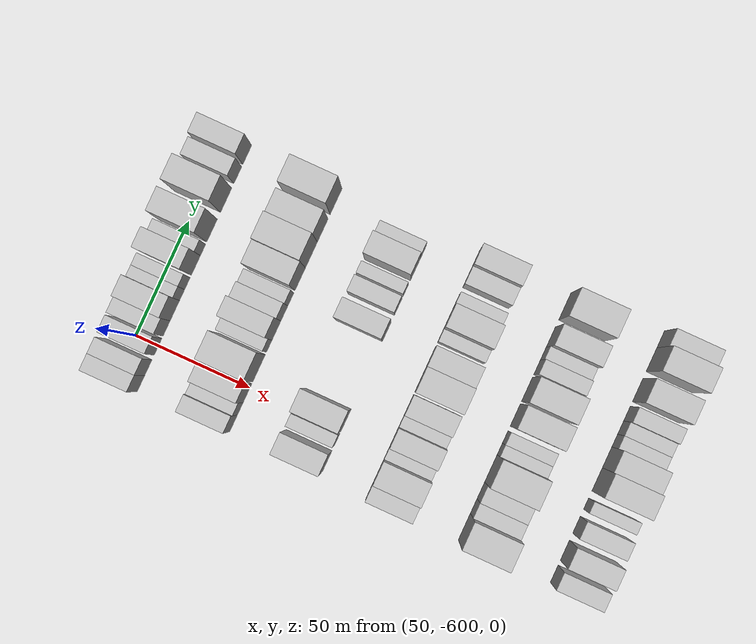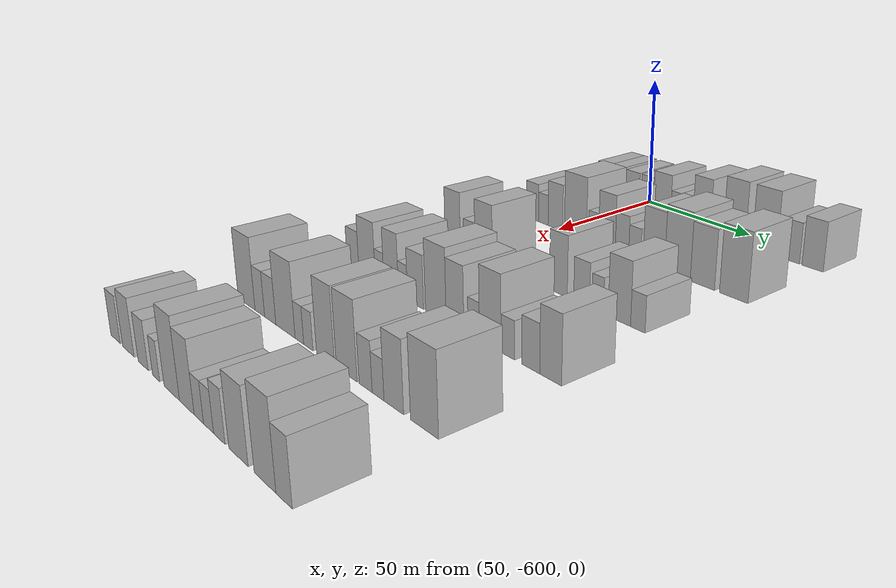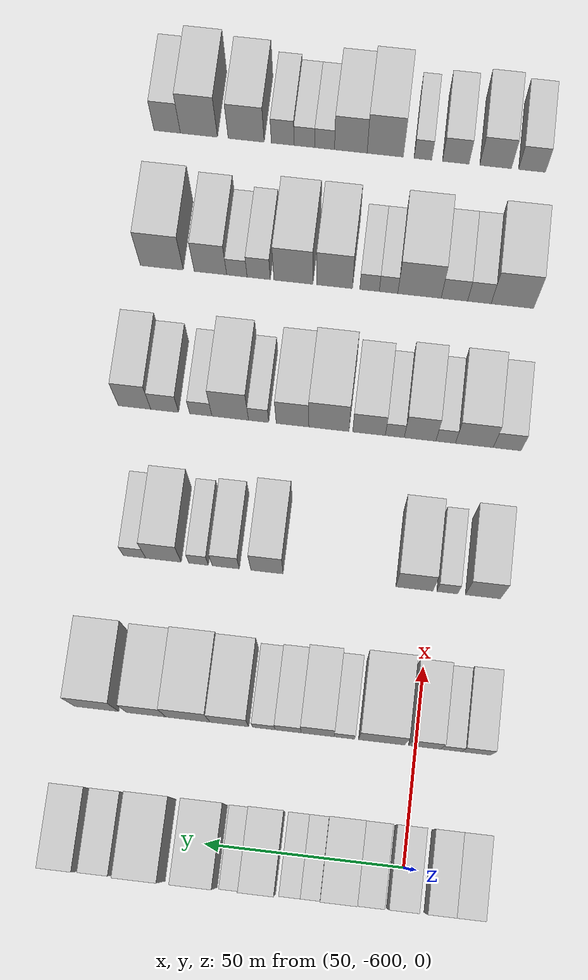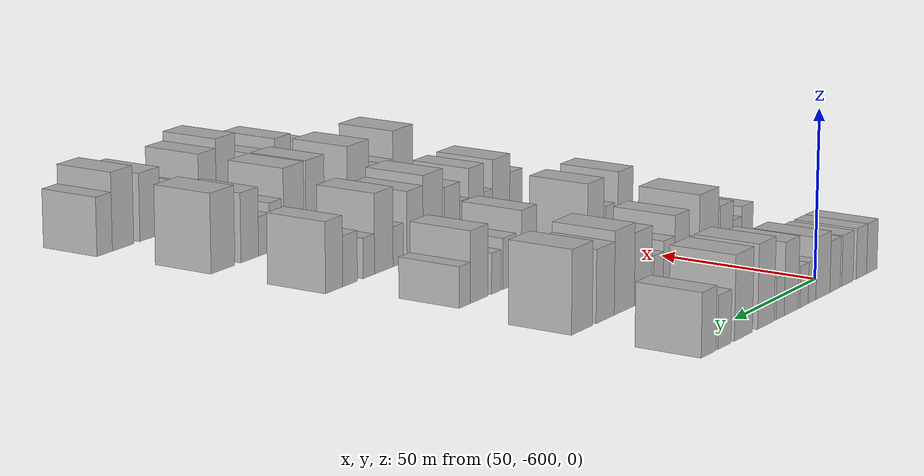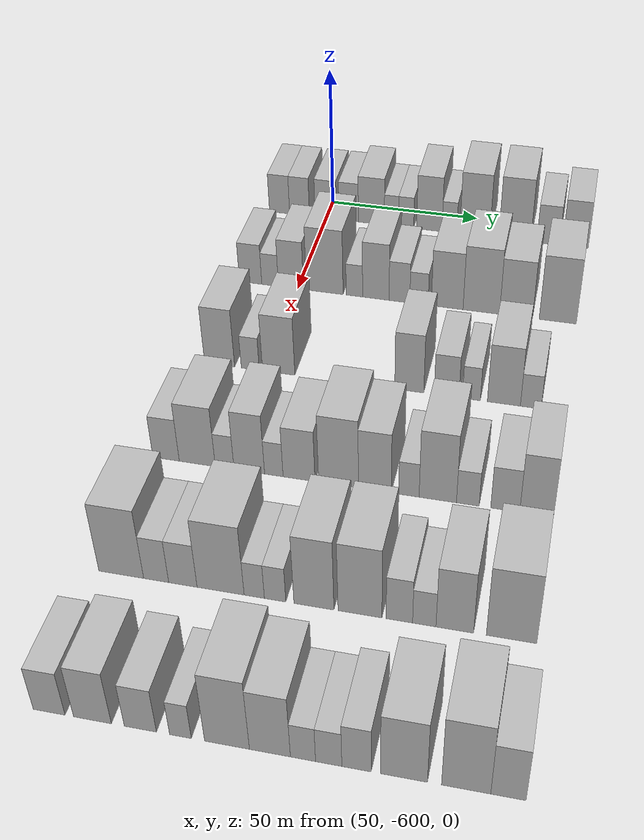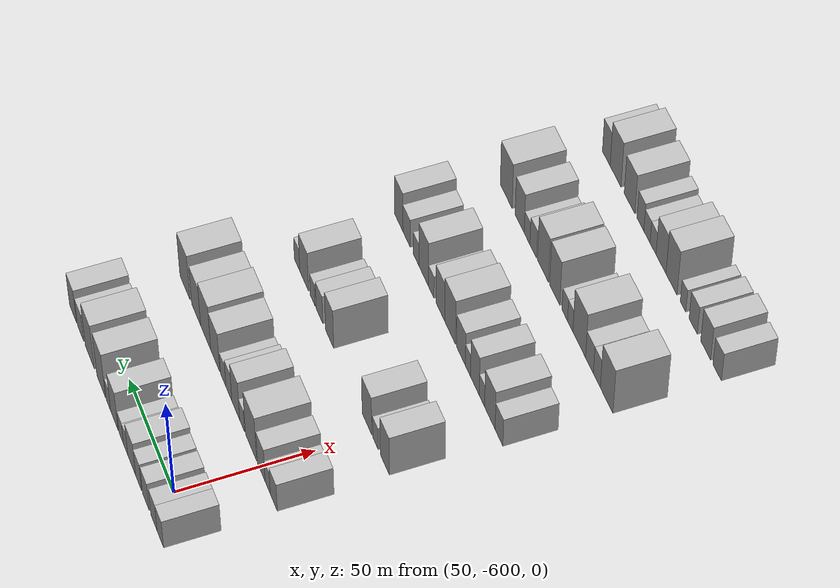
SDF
<sdf version="1.6">
 <world name="default">
  <model name="building_1">
   <static>1</static>
   <pose>50.0000 -616.4705 0 0.000000 0.000000 0.000000</pose>
   <link name="link">
    <pose>0 0 7.50 0 0 0</pose>
    <collision name="collision"><geometry><box><size>20.0000 7.0589 15.0000</size></box></geometry></collision>
    <visual name="visual">
     <cast_shadows>0</cast_shadows>
     <geometry><box><size>20.0000 7.0589 15.0000</size></box></geometry>
     <material>
      <script>
       <uri>model://HANNAS_wall/materials/scripts</uri>
       <uri>model://HANNAS_wall/materials/textures</uri>
       <name>vrc/HANNAS_wall</name>
      </script>
     </material>
    </visual>
   </link>
  </model>
  <model name="building_2">
   <static>1</static>
   <pose>50.0000 -609.4764 0 0.000000 0.000000 0.000000</pose>
   <link name="link">
    <pose>0 0 7.50 0 0 0</pose>
    <collision name="collision"><geometry><box><size>20.0000 6.9293 15.0000</size></box></geometry></collision>
    <visual name="visual">
     <cast_shadows>0</cast_shadows>
     <geometry><box><size>20.0000 6.9293 15.0000</size></box></geometry>
     <material>
      <script>
       <uri>model://HANNAS_wall/materials/scripts</uri>
       <uri>model://HANNAS_wall/materials/textures</uri>
       <name>vrc/HANNAS_wall</name>
      </script>
     </material>
    </visual>
   </link>
  </model>
  <model name="building_3">
   <static>1</static>
   <pose>50.0000 -600.3591 0 0.000000 0.000000 0.000000</pose>
   <link name="link">
    <pose>0 0 7.50 0 0 0</pose>
    <collision name="collision"><geometry><box><size>20.0000 7.3053 15.0000</size></box></geometry></collision>
    <visual name="visual">
     <cast_shadows>0</cast_shadows>
     <geometry><box><size>20.0000 7.3053 15.0000</size></box></geometry>
     <material>
      <script>
       <uri>model://HANNAS_wall/materials/scripts</uri>
       <uri>model://HANNAS_wall/materials/textures</uri>
       <name>vrc/HANNAS_wall</name>
      </script>
     </material>
    </visual>
   </link>
  </model>
  <model name="building_4">
   <static>1</static>
   <pose>50.0000 -592.3727 0 0.000000 0.000000 0.000000</pose>
   <link name="link">
    <pose>0 0 7.50 0 0 0</pose>
    <collision name="collision"><geometry><box><size>20.0000 6.6675 15.0000</size></box></geometry></collision>
    <visual name="visual">
     <cast_shadows>0</cast_shadows>
     <geometry><box><size>20.0000 6.6675 15.0000</size></box></geometry>
     <material>
      <script>
       <uri>model://HANNAS_wall/materials/scripts</uri>
       <uri>model://HANNAS_wall/materials/textures</uri>
       <name>vrc/HANNAS_wall</name>
      </script>
     </material>
    </visual>
   </link>
  </model>
  <model name="building_5">
   <static>1</static>
   <pose>50.0000 -584.5810 0 0.000000 0.000000 0.000000</pose>
   <link name="link">
    <pose>0 0 9.00 0 0 0</pose>
    <collision name="collision"><geometry><box><size>20.0000 8.9159 18.0000</size></box></geometry></collision>
    <visual name="visual">
     <cast_shadows>0</cast_shadows>
     <geometry><box><size>20.0000 8.9159 18.0000</size></box></geometry>
     <material>
      <script>
       <uri>model://HANNAS_wall/materials/scripts</uri>
       <uri>model://HANNAS_wall/materials/textures</uri>
       <name>vrc/HANNAS_wall</name>
      </script>
     </material>
    </visual>
   </link>
  </model>
  <model name="building_6">
   <static>1</static>
   <pose>50.0000 -577.7227 0 0.000000 0.000000 0.000000</pose>
   <link name="link">
    <pose>0 0 6.00 0 0 0</pose>
    <collision name="collision"><geometry><box><size>20.0000 4.8007 12.0000</size></box></geometry></collision>
    <visual name="visual">
     <cast_shadows>0</cast_shadows>
     <geometry><box><size>20.0000 4.8007 12.0000</size></box></geometry>
     <material>
      <script>
       <uri>model://HANNAS_wall/materials/scripts</uri>
       <uri>model://HANNAS_wall/materials/textures</uri>
       <name>vrc/HANNAS_wall</name>
      </script>
     </material>
    </visual>
   </link>
  </model>
  <model name="building_7">
   <static>1</static>
   <pose>50.0000 -572.7120 0 0.000000 0.000000 0.000000</pose>
   <link name="link">
    <pose>0 0 6.00 0 0 0</pose>
    <collision name="collision"><geometry><box><size>20.0000 5.2209 12.0000</size></box></geometry></collision>
    <visual name="visual">
     <cast_shadows>0</cast_shadows>
     <geometry><box><size>20.0000 5.2209 12.0000</size></box></geometry>
     <material>
      <script>
       <uri>model://HANNAS_wall/materials/scripts</uri>
       <uri>model://HANNAS_wall/materials/textures</uri>
       <name>vrc/HANNAS_wall</name>
      </script>
     </material>
    </visual>
   </link>
  </model>
  <model name="building_8">
   <static>1</static>
   <pose>50.0000 -564.8139 0 0.000000 0.000000 0.000000</pose>
   <link name="link">
    <pose>0 0 10.50 0 0 0</pose>
    <collision name="collision"><geometry><box><size>20.0000 8.5753 21.0000</size></box></geometry></collision>
    <visual name="visual">
     <cast_shadows>0</cast_shadows>
     <geometry><box><size>20.0000 8.5753 21.0000</size></box></geometry>
     <material>
      <script>
       <uri>model://HANNAS_wall/materials/scripts</uri>
       <uri>model://HANNAS_wall/materials/textures</uri>
       <name>vrc/HANNAS_wall</name>
      </script>
     </material>
    </visual>
   </link>
  </model>
  <model name="building_9">
   <static>1</static>
   <pose>50.0000 -558.0314 0 0.000000 0.000000 0.000000</pose>
   <link name="link">
    <pose>0 0 6.00 0 0 0</pose>
    <collision name="collision"><geometry><box><size>20.0000 4.9897 12.0000</size></box></geometry></collision>
    <visual name="visual">
     <cast_shadows>0</cast_shadows>
     <geometry><box><size>20.0000 4.9897 12.0000</size></box></geometry>
     <material>
      <script>
       <uri>model://HANNAS_wall/materials/scripts</uri>
       <uri>model://HANNAS_wall/materials/textures</uri>
       <name>vrc/HANNAS_wall</name>
      </script>
     </material>
    </visual>
   </link>
  </model>
  <model name="building_10">
   <static>1</static>
   <pose>50.0000 -549.5226 0 0.000000 0.000000 0.000000</pose>
   <link name="link">
    <pose>0 0 12.00 0 0 0</pose>
    <collision name="collision"><geometry><box><size>20.0000 10.0279 24.0000</size></box></geometry></collision>
    <visual name="visual">
     <cast_shadows>0</cast_shadows>
     <geometry><box><size>20.0000 10.0279 24.0000</size></box></geometry>
     <material>
      <script>
       <uri>model://HANNAS_wall/materials/scripts</uri>
       <uri>model://HANNAS_wall/materials/textures</uri>
       <name>vrc/HANNAS_wall</name>
      </script>
     </material>
    </visual>
   </link>
  </model>
  <model name="building_11">
   <static>1</static>
   <pose>50.0000 -536.2097 0 0.000000 0.000000 0.000000</pose>
   <link name="link">
    <pose>0 0 12.00 0 0 0</pose>
    <collision name="collision"><geometry><box><size>20.0000 10.5979 24.0000</size></box></geometry></collision>
    <visual name="visual">
     <cast_shadows>0</cast_shadows>
     <geometry><box><size>20.0000 10.5979 24.0000</size></box></geometry>
     <material>
      <script>
       <uri>model://HANNAS_wall/materials/scripts</uri>
       <uri>model://HANNAS_wall/materials/textures</uri>
       <name>vrc/HANNAS_wall</name>
      </script>
     </material>
    </visual>
   </link>
  </model>
  <model name="building_12">
   <static>1</static>
   <pose>50.0000 -525.1936 0 0.000000 0.000000 0.000000</pose>
   <link name="link">
    <pose>0 0 7.50 0 0 0</pose>
    <collision name="collision"><geometry><box><size>20.0000 7.4343 15.0000</size></box></geometry></collision>
    <visual name="visual">
     <cast_shadows>0</cast_shadows>
     <geometry><box><size>20.0000 7.4343 15.0000</size></box></geometry>
     <material>
      <script>
       <uri>model://HANNAS_wall/materials/scripts</uri>
       <uri>model://HANNAS_wall/materials/textures</uri>
       <name>vrc/HANNAS_wall</name>
      </script>
     </material>
    </visual>
   </link>
  </model>
  <model name="building_13">
   <static>1</static>
   <pose>50.0000 -516.2731 0 0.000000 0.000000 0.000000</pose>
   <link name="link">
    <pose>0 0 9.00 0 0 0</pose>
    <collision name="collision"><geometry><box><size>20.0000 8.4065 18.0000</size></box></geometry></collision>
    <visual name="visual">
     <cast_shadows>0</cast_shadows>
     <geometry><box><size>20.0000 8.4065 18.0000</size></box></geometry>
     <material>
      <script>
       <uri>model://HANNAS_wall/materials/scripts</uri>
       <uri>model://HANNAS_wall/materials/textures</uri>
       <name>vrc/HANNAS_wall</name>
      </script>
     </material>
    </visual>
   </link>
  </model>
  <model name="building_138">
   <static>1</static>
   <pose>90.0000 -615.3530 0 0.000000 0.000000 0.000000</pose>
   <link name="link">
    <pose>0 0 7.50 0 0 0</pose>
    <collision name="collision"><geometry><box><size>20.0000 7.2939 15.0000</size></box></geometry></collision>
    <visual name="visual">
     <cast_shadows>0</cast_shadows>
     <geometry><box><size>20.0000 7.2939 15.0000</size></box></geometry>
     <material>
      <script>
       <uri>model://HANNAS_wall/materials/scripts</uri>
       <uri>model://HANNAS_wall/materials/textures</uri>
       <name>vrc/HANNAS_wall</name>
      </script>
     </material>
    </visual>
   </link>
  </model>
  <model name="building_139">
   <static>1</static>
   <pose>90.0000 -609.0013 0 0.000000 0.000000 0.000000</pose>
   <link name="link">
    <pose>0 0 6.00 0 0 0</pose>
    <collision name="collision"><geometry><box><size>20.0000 5.4095 12.0000</size></box></geometry></collision>
    <visual name="visual">
     <cast_shadows>0</cast_shadows>
     <geometry><box><size>20.0000 5.4095 12.0000</size></box></geometry>
     <material>
      <script>
       <uri>model://HANNAS_wall/materials/scripts</uri>
       <uri>model://HANNAS_wall/materials/textures</uri>
       <name>vrc/HANNAS_wall</name>
      </script>
     </material>
    </visual>
   </link>
  </model>
  <model name="building_140">
   <static>1</static>
   <pose>90.0000 -602.2272 0 0.000000 0.000000 0.000000</pose>
   <link name="link">
    <pose>0 0 9.00 0 0 0</pose>
    <collision name="collision"><geometry><box><size>20.0000 8.1388 18.0000</size></box></geometry></collision>
    <visual name="visual">
     <cast_shadows>0</cast_shadows>
     <geometry><box><size>20.0000 8.1388 18.0000</size></box></geometry>
     <material>
      <script>
       <uri>model://HANNAS_wall/materials/scripts</uri>
       <uri>model://HANNAS_wall/materials/textures</uri>
       <name>vrc/HANNAS_wall</name>
      </script>
     </material>
    </visual>
   </link>
  </model>
  <model name="building_141">
   <static>1</static>
   <pose>90.0000 -591.2731 0 0.000000 0.000000 0.000000</pose>
   <link name="link">
    <pose>0 0 12.00 0 0 0</pose>
    <collision name="collision"><geometry><box><size>20.0000 11.7693 24.0000</size></box></geometry></collision>
    <visual name="visual">
     <cast_shadows>0</cast_shadows>
     <geometry><box><size>20.0000 11.7693 24.0000</size></box></geometry>
     <material>
      <script>
       <uri>model://HANNAS_wall/materials/scripts</uri>
       <uri>model://HANNAS_wall/materials/textures</uri>
       <name>vrc/HANNAS_wall</name>
      </script>
     </material>
    </visual>
   </link>
  </model>
  <model name="building_142">
   <static>1</static>
   <pose>90.0000 -581.7751 0 0.000000 0.000000 0.000000</pose>
   <link name="link">
    <pose>0 0 6.00 0 0 0</pose>
    <collision name="collision"><geometry><box><size>20.0000 5.2268 12.0000</size></box></geometry></collision>
    <visual name="visual">
     <cast_shadows>0</cast_shadows>
     <geometry><box><size>20.0000 5.2268 12.0000</size></box></geometry>
     <material>
      <script>
       <uri>model://HANNAS_wall/materials/scripts</uri>
       <uri>model://HANNAS_wall/materials/textures</uri>
       <name>vrc/HANNAS_wall</name>
      </script>
     </material>
    </visual>
   </link>
  </model>
  <model name="building_143">
   <static>1</static>
   <pose>90.0000 -574.9523 0 0.000000 0.000000 0.000000</pose>
   <link name="link">
    <pose>0 0 10.50 0 0 0</pose>
    <collision name="collision"><geometry><box><size>20.0000 8.4187 21.0000</size></box></geometry></collision>
    <visual name="visual">
     <cast_shadows>0</cast_shadows>
     <geometry><box><size>20.0000 8.4187 21.0000</size></box></geometry>
     <material>
      <script>
       <uri>model://HANNAS_wall/materials/scripts</uri>
       <uri>model://HANNAS_wall/materials/textures</uri>
       <name>vrc/HANNAS_wall</name>
      </script>
     </material>
    </visual>
   </link>
  </model>
  <model name="building_144">
   <static>1</static>
   <pose>90.0000 -567.4623 0 0.000000 0.000000 0.000000</pose>
   <link name="link">
    <pose>0 0 7.50 0 0 0</pose>
    <collision name="collision"><geometry><box><size>20.0000 6.5612 15.0000</size></box></geometry></collision>
    <visual name="visual">
     <cast_shadows>0</cast_shadows>
     <geometry><box><size>20.0000 6.5612 15.0000</size></box></geometry>
     <material>
      <script>
       <uri>model://HANNAS_wall/materials/scripts</uri>
       <uri>model://HANNAS_wall/materials/textures</uri>
       <name>vrc/HANNAS_wall</name>
      </script>
     </material>
    </visual>
   </link>
  </model>
  <model name="building_145">
   <static>1</static>
   <pose>90.0000 -561.3043 0 0.000000 0.000000 0.000000</pose>
   <link name="link">
    <pose>0 0 6.00 0 0 0</pose>
    <collision name="collision"><geometry><box><size>20.0000 5.7549 12.0000</size></box></geometry></collision>
    <visual name="visual">
     <cast_shadows>0</cast_shadows>
     <geometry><box><size>20.0000 5.7549 12.0000</size></box></geometry>
     <material>
      <script>
       <uri>model://HANNAS_wall/materials/scripts</uri>
       <uri>model://HANNAS_wall/materials/textures</uri>
       <name>vrc/HANNAS_wall</name>
      </script>
     </material>
    </visual>
   </link>
  </model>
  <model name="building_146">
   <static>1</static>
   <pose>90.0000 -552.4795 0 0.000000 0.000000 0.000000</pose>
   <link name="link">
    <pose>0 0 10.50 0 0 0</pose>
    <collision name="collision"><geometry><box><size>20.0000 9.8946 21.0000</size></box></geometry></collision>
    <visual name="visual">
     <cast_shadows>0</cast_shadows>
     <geometry><box><size>20.0000 9.8946 21.0000</size></box></geometry>
     <material>
      <script>
       <uri>model://HANNAS_wall/materials/scripts</uri>
       <uri>model://HANNAS_wall/materials/textures</uri>
       <name>vrc/HANNAS_wall</name>
      </script>
     </material>
    </visual>
   </link>
  </model>
  <model name="building_147">
   <static>1</static>
   <pose>90.0000 -541.8738 0 0.000000 0.000000 0.000000</pose>
   <link name="link">
    <pose>0 0 12.00 0 0 0</pose>
    <collision name="collision"><geometry><box><size>20.0000 11.3169 24.0000</size></box></geometry></collision>
    <visual name="visual">
     <cast_shadows>0</cast_shadows>
     <geometry><box><size>20.0000 11.3169 24.0000</size></box></geometry>
     <material>
      <script>
       <uri>model://HANNAS_wall/materials/scripts</uri>
       <uri>model://HANNAS_wall/materials/textures</uri>
       <name>vrc/HANNAS_wall</name>
      </script>
     </material>
    </visual>
   </link>
  </model>
  <model name="building_148">
   <static>1</static>
   <pose>90.0000 -531.1500 0 0.000000 0.000000 0.000000</pose>
   <link name="link">
    <pose>0 0 10.50 0 0 0</pose>
    <collision name="collision"><geometry><box><size>20.0000 10.1308 21.0000</size></box></geometry></collision>
    <visual name="visual">
     <cast_shadows>0</cast_shadows>
     <geometry><box><size>20.0000 10.1308 21.0000</size></box></geometry>
     <material>
      <script>
       <uri>model://HANNAS_wall/materials/scripts</uri>
       <uri>model://HANNAS_wall/materials/textures</uri>
       <name>vrc/HANNAS_wall</name>
      </script>
     </material>
    </visual>
   </link>
  </model>
  <model name="building_149">
   <static>1</static>
   <pose>90.0000 -518.4403 0 0.000000 0.000000 0.000000</pose>
   <link name="link">
    <pose>0 0 12.00 0 0 0</pose>
    <collision name="collision"><geometry><box><size>20.0000 11.2885 24.0000</size></box></geometry></collision>
    <visual name="visual">
     <cast_shadows>0</cast_shadows>
     <geometry><box><size>20.0000 11.2885 24.0000</size></box></geometry>
     <material>
      <script>
       <uri>model://HANNAS_wall/materials/scripts</uri>
       <uri>model://HANNAS_wall/materials/textures</uri>
       <name>vrc/HANNAS_wall</name>
      </script>
     </material>
    </visual>
   </link>
  </model>
  <model name="building_277">
   <static>1</static>
   <pose>130.0000 -613.4334 0 0.000000 0.000000 0.000000</pose>
   <link name="link">
    <pose>0 0 10.50 0 0 0</pose>
    <collision name="collision"><geometry><box><size>20.0000 9.1332 21.0000</size></box></geometry></collision>
    <visual name="visual">
     <cast_shadows>0</cast_shadows>
     <geometry><box><size>20.0000 9.1332 21.0000</size></box></geometry>
     <material>
      <script>
       <uri>model://HANNAS_wall/materials/scripts</uri>
       <uri>model://HANNAS_wall/materials/textures</uri>
       <name>vrc/HANNAS_wall</name>
      </script>
     </material>
    </visual>
   </link>
  </model>
  <model name="building_278">
   <static>1</static>
   <pose>130.0000 -604.1503 0 0.000000 0.000000 0.000000</pose>
   <link name="link">
    <pose>0 0 6.00 0 0 0</pose>
    <collision name="collision"><geometry><box><size>20.0000 5.4331 12.0000</size></box></geometry></collision>
    <visual name="visual">
     <cast_shadows>0</cast_shadows>
     <geometry><box><size>20.0000 5.4331 12.0000</size></box></geometry>
     <material>
      <script>
       <uri>model://HANNAS_wall/materials/scripts</uri>
       <uri>model://HANNAS_wall/materials/textures</uri>
       <name>vrc/HANNAS_wall</name>
      </script>
     </material>
    </visual>
   </link>
  </model>
  <model name="building_279">
   <static>1</static>
   <pose>130.0000 -595.6013 0 0.000000 0.000000 0.000000</pose>
   <link name="link">
    <pose>0 0 10.50 0 0 0</pose>
    <collision name="collision"><geometry><box><size>20.0000 9.6648 21.0000</size></box></geometry></collision>
    <visual name="visual">
     <cast_shadows>0</cast_shadows>
     <geometry><box><size>20.0000 9.6648 21.0000</size></box></geometry>
     <material>
      <script>
       <uri>model://HANNAS_wall/materials/scripts</uri>
       <uri>model://HANNAS_wall/materials/textures</uri>
       <name>vrc/HANNAS_wall</name>
      </script>
     </material>
    </visual>
   </link>
  </model>
  <model name="building_280">
   <static>1</static>
   <pose>130.0000 -557.1282 0 0.000000 0.000000 0.000000</pose>
   <link name="link">
    <pose>0 0 10.50 0 0 0</pose>
    <collision name="collision"><geometry><box><size>20.0000 8.4271 21.0000</size></box></geometry></collision>
    <visual name="visual">
     <cast_shadows>0</cast_shadows>
     <geometry><box><size>20.0000 8.4271 21.0000</size></box></geometry>
     <material>
      <script>
       <uri>model://HANNAS_wall/materials/scripts</uri>
       <uri>model://HANNAS_wall/materials/textures</uri>
       <name>vrc/HANNAS_wall</name>
      </script>
     </material>
    </visual>
   </link>
  </model>
  <model name="building_281">
   <static>1</static>
   <pose>130.0000 -546.3580 0 0.000000 0.000000 0.000000</pose>
   <link name="link">
    <pose>0 0 7.50 0 0 0</pose>
    <collision name="collision"><geometry><box><size>20.0000 7.1132 15.0000</size></box></geometry></collision>
    <visual name="visual">
     <cast_shadows>0</cast_shadows>
     <geometry><box><size>20.0000 7.1132 15.0000</size></box></geometry>
     <material>
      <script>
       <uri>model://HANNAS_wall/materials/scripts</uri>
       <uri>model://HANNAS_wall/materials/textures</uri>
       <name>vrc/HANNAS_wall</name>
      </script>
     </material>
    </visual>
   </link>
  </model>
  <model name="building_282">
   <static>1</static>
   <pose>130.0000 -539.2427 0 0.000000 0.000000 0.000000</pose>
   <link name="link">
    <pose>0 0 6.00 0 0 0</pose>
    <collision name="collision"><geometry><box><size>20.0000 5.1175 12.0000</size></box></geometry></collision>
    <visual name="visual">
     <cast_shadows>0</cast_shadows>
     <geometry><box><size>20.0000 5.1175 12.0000</size></box></geometry>
     <material>
      <script>
       <uri>model://HANNAS_wall/materials/scripts</uri>
       <uri>model://HANNAS_wall/materials/textures</uri>
       <name>vrc/HANNAS_wall</name>
      </script>
     </material>
    </visual>
   </link>
  </model>
  <model name="building_283">
   <static>1</static>
   <pose>130.0000 -530.0091 0 0.000000 0.000000 0.000000</pose>
   <link name="link">
    <pose>0 0 10.50 0 0 0</pose>
    <collision name="collision"><geometry><box><size>20.0000 9.3495 21.0000</size></box></geometry></collision>
    <visual name="visual">
     <cast_shadows>0</cast_shadows>
     <geometry><box><size>20.0000 9.3495 21.0000</size></box></geometry>
     <material>
      <script>
       <uri>model://HANNAS_wall/materials/scripts</uri>
       <uri>model://HANNAS_wall/materials/textures</uri>
       <name>vrc/HANNAS_wall</name>
      </script>
     </material>
    </visual>
   </link>
  </model>
  <model name="building_284">
   <static>1</static>
   <pose>130.0000 -522.4063 0 0.000000 0.000000 0.000000</pose>
   <link name="link">
    <pose>0 0 6.00 0 0 0</pose>
    <collision name="collision"><geometry><box><size>20.0000 5.8561 12.0000</size></box></geometry></collision>
    <visual name="visual">
     <cast_shadows>0</cast_shadows>
     <geometry><box><size>20.0000 5.8561 12.0000</size></box></geometry>
     <material>
      <script>
       <uri>model://HANNAS_wall/materials/scripts</uri>
       <uri>model://HANNAS_wall/materials/textures</uri>
       <name>vrc/HANNAS_wall</name>
      </script>
     </material>
    </visual>
   </link>
  </model>
  <model name="building_416">
   <static>1</static>
   <pose>170.0000 -616.2871 0 0.000000 0.000000 0.000000</pose>
   <link name="link">
    <pose>0 0 7.50 0 0 0</pose>
    <collision name="collision"><geometry><box><size>20.0000 7.4257 15.0000</size></box></geometry></collision>
    <visual name="visual">
     <cast_shadows>0</cast_shadows>
     <geometry><box><size>20.0000 7.4257 15.0000</size></box></geometry>
     <material>
      <script>
       <uri>model://HANNAS_wall/materials/scripts</uri>
       <uri>model://HANNAS_wall/materials/textures</uri>
       <name>vrc/HANNAS_wall</name>
      </script>
     </material>
    </visual>
   </link>
  </model>
  <model name="building_417">
   <static>1</static>
   <pose>170.0000 -607.5395 0 0.000000 0.000000 0.000000</pose>
   <link name="link">
    <pose>0 0 10.50 0 0 0</pose>
    <collision name="collision"><geometry><box><size>20.0000 10.0695 21.0000</size></box></geometry></collision>
    <visual name="visual">
     <cast_shadows>0</cast_shadows>
     <geometry><box><size>20.0000 10.0695 21.0000</size></box></geometry>
     <material>
      <script>
       <uri>model://HANNAS_wall/materials/scripts</uri>
       <uri>model://HANNAS_wall/materials/textures</uri>
       <name>vrc/HANNAS_wall</name>
      </script>
     </material>
    </visual>
   </link>
  </model>
  <model name="building_418">
   <static>1</static>
   <pose>170.0000 -599.9069 0 0.000000 0.000000 0.000000</pose>
   <link name="link">
    <pose>0 0 6.00 0 0 0</pose>
    <collision name="collision"><geometry><box><size>20.0000 5.1957 12.0000</size></box></geometry></collision>
    <visual name="visual">
     <cast_shadows>0</cast_shadows>
     <geometry><box><size>20.0000 5.1957 12.0000</size></box></geometry>
     <material>
      <script>
       <uri>model://HANNAS_wall/materials/scripts</uri>
       <uri>model://HANNAS_wall/materials/textures</uri>
       <name>vrc/HANNAS_wall</name>
      </script>
     </material>
    </visual>
   </link>
  </model>
  <model name="building_419">
   <static>1</static>
   <pose>170.0000 -593.0954 0 0.000000 0.000000 0.000000</pose>
   <link name="link">
    <pose>0 0 10.50 0 0 0</pose>
    <collision name="collision"><geometry><box><size>20.0000 8.4274 21.0000</size></box></geometry></collision>
    <visual name="visual">
     <cast_shadows>0</cast_shadows>
     <geometry><box><size>20.0000 8.4274 21.0000</size></box></geometry>
     <material>
      <script>
       <uri>model://HANNAS_wall/materials/scripts</uri>
       <uri>model://HANNAS_wall/materials/textures</uri>
       <name>vrc/HANNAS_wall</name>
      </script>
     </material>
    </visual>
   </link>
  </model>
  <model name="building_420">
   <static>1</static>
   <pose>170.0000 -586.3516 0 0.000000 0.000000 0.000000</pose>
   <link name="link">
    <pose>0 0 6.00 0 0 0</pose>
    <collision name="collision"><geometry><box><size>20.0000 5.0602 12.0000</size></box></geometry></collision>
    <visual name="visual">
     <cast_shadows>0</cast_shadows>
     <geometry><box><size>20.0000 5.0602 12.0000</size></box></geometry>
     <material>
      <script>
       <uri>model://HANNAS_wall/materials/scripts</uri>
       <uri>model://HANNAS_wall/materials/textures</uri>
       <name>vrc/HANNAS_wall</name>
      </script>
     </material>
    </visual>
   </link>
  </model>
  <model name="building_421">
   <static>1</static>
   <pose>170.0000 -579.4795 0 0.000000 0.000000 0.000000</pose>
   <link name="link">
    <pose>0 0 9.00 0 0 0</pose>
    <collision name="collision"><geometry><box><size>20.0000 8.6840 18.0000</size></box></geometry></collision>
    <visual name="visual">
     <cast_shadows>0</cast_shadows>
     <geometry><box><size>20.0000 8.6840 18.0000</size></box></geometry>
     <material>
      <script>
       <uri>model://HANNAS_wall/materials/scripts</uri>
       <uri>model://HANNAS_wall/materials/textures</uri>
       <name>vrc/HANNAS_wall</name>
      </script>
     </material>
    </visual>
   </link>
  </model>
  <model name="building_422">
   <static>1</static>
   <pose>170.0000 -568.7720 0 0.000000 0.000000 0.000000</pose>
   <link name="link">
    <pose>0 0 12.00 0 0 0</pose>
    <collision name="collision"><geometry><box><size>20.0000 10.7310 24.0000</size></box></geometry></collision>
    <visual name="visual">
     <cast_shadows>0</cast_shadows>
     <geometry><box><size>20.0000 10.7310 24.0000</size></box></geometry>
     <material>
      <script>
       <uri>model://HANNAS_wall/materials/scripts</uri>
       <uri>model://HANNAS_wall/materials/textures</uri>
       <name>vrc/HANNAS_wall</name>
      </script>
     </material>
    </visual>
   </link>
  </model>
  <model name="building_423">
   <static>1</static>
   <pose>170.0000 -559.0408 0 0.000000 0.000000 0.000000</pose>
   <link name="link">
    <pose>0 0 10.50 0 0 0</pose>
    <collision name="collision"><geometry><box><size>20.0000 8.7314 21.0000</size></box></geometry></collision>
    <visual name="visual">
     <cast_shadows>0</cast_shadows>
     <geometry><box><size>20.0000 8.7314 21.0000</size></box></geometry>
     <material>
      <script>
       <uri>model://HANNAS_wall/materials/scripts</uri>
       <uri>model://HANNAS_wall/materials/textures</uri>
       <name>vrc/HANNAS_wall</name>
      </script>
     </material>
    </visual>
   </link>
  </model>
  <model name="building_424">
   <static>1</static>
   <pose>170.0000 -549.9746 0 0.000000 0.000000 0.000000</pose>
   <link name="link">
    <pose>0 0 6.00 0 0 0</pose>
    <collision name="collision"><geometry><box><size>20.0000 5.4011 12.0000</size></box></geometry></collision>
    <visual name="visual">
     <cast_shadows>0</cast_shadows>
     <geometry><box><size>20.0000 5.4011 12.0000</size></box></geometry>
     <material>
      <script>
       <uri>model://HANNAS_wall/materials/scripts</uri>
       <uri>model://HANNAS_wall/materials/textures</uri>
       <name>vrc/HANNAS_wall</name>
      </script>
     </material>
    </visual>
   </link>
  </model>
  <model name="building_425">
   <static>1</static>
   <pose>170.0000 -542.3629 0 0.000000 0.000000 0.000000</pose>
   <link name="link">
    <pose>0 0 12.00 0 0 0</pose>
    <collision name="collision"><geometry><box><size>20.0000 9.8222 24.0000</size></box></geometry></collision>
    <visual name="visual">
     <cast_shadows>0</cast_shadows>
     <geometry><box><size>20.0000 9.8222 24.0000</size></box></geometry>
     <material>
      <script>
       <uri>model://HANNAS_wall/materials/scripts</uri>
       <uri>model://HANNAS_wall/materials/textures</uri>
       <name>vrc/HANNAS_wall</name>
      </script>
     </material>
    </visual>
   </link>
  </model>
  <model name="building_426">
   <static>1</static>
   <pose>170.0000 -534.4850 0 0.000000 0.000000 0.000000</pose>
   <link name="link">
    <pose>0 0 6.00 0 0 0</pose>
    <collision name="collision"><geometry><box><size>20.0000 5.9337 12.0000</size></box></geometry></collision>
    <visual name="visual">
     <cast_shadows>0</cast_shadows>
     <geometry><box><size>20.0000 5.9337 12.0000</size></box></geometry>
     <material>
      <script>
       <uri>model://HANNAS_wall/materials/scripts</uri>
       <uri>model://HANNAS_wall/materials/textures</uri>
       <name>vrc/HANNAS_wall</name>
      </script>
     </material>
    </visual>
   </link>
  </model>
  <model name="building_427">
   <static>1</static>
   <pose>170.0000 -524.7727 0 0.000000 0.000000 0.000000</pose>
   <link name="link">
    <pose>0 0 7.50 0 0 0</pose>
    <collision name="collision"><geometry><box><size>20.0000 7.4908 15.0000</size></box></geometry></collision>
    <visual name="visual">
     <cast_shadows>0</cast_shadows>
     <geometry><box><size>20.0000 7.4908 15.0000</size></box></geometry>
     <material>
      <script>
       <uri>model://HANNAS_wall/materials/scripts</uri>
       <uri>model://HANNAS_wall/materials/textures</uri>
       <name>vrc/HANNAS_wall</name>
      </script>
     </material>
    </visual>
   </link>
  </model>
  <model name="building_428">
   <static>1</static>
   <pose>170.0000 -516.6792 0 0.000000 0.000000 0.000000</pose>
   <link name="link">
    <pose>0 0 10.50 0 0 0</pose>
    <collision name="collision"><geometry><box><size>20.0000 8.6963 21.0000</size></box></geometry></collision>
    <visual name="visual">
     <cast_shadows>0</cast_shadows>
     <geometry><box><size>20.0000 8.6963 21.0000</size></box></geometry>
     <material>
      <script>
       <uri>model://HANNAS_wall/materials/scripts</uri>
       <uri>model://HANNAS_wall/materials/textures</uri>
       <name>vrc/HANNAS_wall</name>
      </script>
     </material>
    </visual>
   </link>
  </model>
  <model name="building_560">
   <static>1</static>
   <pose>210.0000 -614.2312 0 0.000000 0.000000 0.000000</pose>
   <link name="link">
    <pose>0 0 12.00 0 0 0</pose>
    <collision name="collision"><geometry><box><size>20.0000 11.5377 24.0000</size></box></geometry></collision>
    <visual name="visual">
     <cast_shadows>0</cast_shadows>
     <geometry><box><size>20.0000 11.5377 24.0000</size></box></geometry>
     <material>
      <script>
       <uri>model://HANNAS_wall/materials/scripts</uri>
       <uri>model://HANNAS_wall/materials/textures</uri>
       <name>vrc/HANNAS_wall</name>
      </script>
     </material>
    </visual>
   </link>
  </model>
  <model name="building_561">
   <static>1</static>
   <pose>210.0000 -605.2638 0 0.000000 0.000000 0.000000</pose>
   <link name="link">
    <pose>0 0 7.50 0 0 0</pose>
    <collision name="collision"><geometry><box><size>20.0000 6.3970 15.0000</size></box></geometry></collision>
    <visual name="visual">
     <cast_shadows>0</cast_shadows>
     <geometry><box><size>20.0000 6.3970 15.0000</size></box></geometry>
     <material>
      <script>
       <uri>model://HANNAS_wall/materials/scripts</uri>
       <uri>model://HANNAS_wall/materials/textures</uri>
       <name>vrc/HANNAS_wall</name>
      </script>
     </material>
    </visual>
   </link>
  </model>
  <model name="building_562">
   <static>1</static>
   <pose>210.0000 -598.4623 0 0.000000 0.000000 0.000000</pose>
   <link name="link">
    <pose>0 0 7.50 0 0 0</pose>
    <collision name="collision"><geometry><box><size>20.0000 7.2060 15.0000</size></box></geometry></collision>
    <visual name="visual">
     <cast_shadows>0</cast_shadows>
     <geometry><box><size>20.0000 7.2060 15.0000</size></box></geometry>
     <material>
      <script>
       <uri>model://HANNAS_wall/materials/scripts</uri>
       <uri>model://HANNAS_wall/materials/textures</uri>
       <name>vrc/HANNAS_wall</name>
      </script>
     </material>
    </visual>
   </link>
  </model>
  <model name="building_563">
   <static>1</static>
   <pose>210.0000 -588.9458 0 0.000000 0.000000 0.000000</pose>
   <link name="link">
    <pose>0 0 12.00 0 0 0</pose>
    <collision name="collision"><geometry><box><size>20.0000 11.8271 24.0000</size></box></geometry></collision>
    <visual name="visual">
     <cast_shadows>0</cast_shadows>
     <geometry><box><size>20.0000 11.8271 24.0000</size></box></geometry>
     <material>
      <script>
       <uri>model://HANNAS_wall/materials/scripts</uri>
       <uri>model://HANNAS_wall/materials/textures</uri>
       <name>vrc/HANNAS_wall</name>
      </script>
     </material>
    </visual>
   </link>
  </model>
  <model name="building_564">
   <static>1</static>
   <pose>210.0000 -580.5071 0 0.000000 0.000000 0.000000</pose>
   <link name="link">
    <pose>0 0 6.00 0 0 0</pose>
    <collision name="collision"><geometry><box><size>20.0000 5.0503 12.0000</size></box></geometry></collision>
    <visual name="visual">
     <cast_shadows>0</cast_shadows>
     <geometry><box><size>20.0000 5.0503 12.0000</size></box></geometry>
     <material>
      <script>
       <uri>model://HANNAS_wall/materials/scripts</uri>
       <uri>model://HANNAS_wall/materials/textures</uri>
       <name>vrc/HANNAS_wall</name>
      </script>
     </material>
    </visual>
   </link>
  </model>
  <model name="building_565">
   <static>1</static>
   <pose>210.0000 -575.3259 0 0.000000 0.000000 0.000000</pose>
   <link name="link">
    <pose>0 0 6.00 0 0 0</pose>
    <collision name="collision"><geometry><box><size>20.0000 5.3120 12.0000</size></box></geometry></collision>
    <visual name="visual">
     <cast_shadows>0</cast_shadows>
     <geometry><box><size>20.0000 5.3120 12.0000</size></box></geometry>
     <material>
      <script>
       <uri>model://HANNAS_wall/materials/scripts</uri>
       <uri>model://HANNAS_wall/materials/textures</uri>
       <name>vrc/HANNAS_wall</name>
      </script>
     </material>
    </visual>
   </link>
  </model>
  <model name="building_566">
   <static>1</static>
   <pose>210.0000 -565.7588 0 0.000000 0.000000 0.000000</pose>
   <link name="link">
    <pose>0 0 12.00 0 0 0</pose>
    <collision name="collision"><geometry><box><size>20.0000 9.8222 24.0000</size></box></geometry></collision>
    <visual name="visual">
     <cast_shadows>0</cast_shadows>
     <geometry><box><size>20.0000 9.8222 24.0000</size></box></geometry>
     <material>
      <script>
       <uri>model://HANNAS_wall/materials/scripts</uri>
       <uri>model://HANNAS_wall/materials/textures</uri>
       <name>vrc/HANNAS_wall</name>
      </script>
     </material>
    </visual>
   </link>
  </model>
  <model name="building_567">
   <static>1</static>
   <pose>210.0000 -554.5235 0 0.000000 0.000000 0.000000</pose>
   <link name="link">
    <pose>0 0 12.00 0 0 0</pose>
    <collision name="collision"><geometry><box><size>20.0000 10.6485 24.0000</size></box></geometry></collision>
    <visual name="visual">
     <cast_shadows>0</cast_shadows>
     <geometry><box><size>20.0000 10.6485 24.0000</size></box></geometry>
     <material>
      <script>
       <uri>model://HANNAS_wall/materials/scripts</uri>
       <uri>model://HANNAS_wall/materials/textures</uri>
       <name>vrc/HANNAS_wall</name>
      </script>
     </material>
    </visual>
   </link>
  </model>
  <model name="building_568">
   <static>1</static>
   <pose>210.0000 -545.0180 0 0.000000 0.000000 0.000000</pose>
   <link name="link">
    <pose>0 0 7.50 0 0 0</pose>
    <collision name="collision"><geometry><box><size>20.0000 6.3625 15.0000</size></box></geometry></collision>
    <visual name="visual">
     <cast_shadows>0</cast_shadows>
     <geometry><box><size>20.0000 6.3625 15.0000</size></box></geometry>
     <material>
      <script>
       <uri>model://HANNAS_wall/materials/scripts</uri>
       <uri>model://HANNAS_wall/materials/textures</uri>
       <name>vrc/HANNAS_wall</name>
      </script>
     </material>
    </visual>
   </link>
  </model>
  <model name="building_569">
   <static>1</static>
   <pose>210.0000 -539.0421 0 0.000000 0.000000 0.000000</pose>
   <link name="link">
    <pose>0 0 6.00 0 0 0</pose>
    <collision name="collision"><geometry><box><size>20.0000 5.5893 12.0000</size></box></geometry></collision>
    <visual name="visual">
     <cast_shadows>0</cast_shadows>
     <geometry><box><size>20.0000 5.5893 12.0000</size></box></geometry>
     <material>
      <script>
       <uri>model://HANNAS_wall/materials/scripts</uri>
       <uri>model://HANNAS_wall/materials/textures</uri>
       <name>vrc/HANNAS_wall</name>
      </script>
     </material>
    </visual>
   </link>
  </model>
  <model name="building_570">
   <static>1</static>
   <pose>210.0000 -531.7903 0 0.000000 0.000000 0.000000</pose>
   <link name="link">
    <pose>0 0 10.50 0 0 0</pose>
    <collision name="collision"><geometry><box><size>20.0000 8.9142 21.0000</size></box></geometry></collision>
    <visual name="visual">
     <cast_shadows>0</cast_shadows>
     <geometry><box><size>20.0000 8.9142 21.0000</size></box></geometry>
     <material>
      <script>
       <uri>model://HANNAS_wall/materials/scripts</uri>
       <uri>model://HANNAS_wall/materials/textures</uri>
       <name>vrc/HANNAS_wall</name>
      </script>
     </material>
    </visual>
   </link>
  </model>
  <model name="building_571">
   <static>1</static>
   <pose>210.0000 -518.4400 0 0.000000 0.000000 0.000000</pose>
   <link name="link">
    <pose>0 0 12.00 0 0 0</pose>
    <collision name="collision"><geometry><box><size>20.0000 11.7865 24.0000</size></box></geometry></collision>
    <visual name="visual">
     <cast_shadows>0</cast_shadows>
     <geometry><box><size>20.0000 11.7865 24.0000</size></box></geometry>
     <material>
      <script>
       <uri>model://HANNAS_wall/materials/scripts</uri>
       <uri>model://HANNAS_wall/materials/textures</uri>
       <name>vrc/HANNAS_wall</name>
      </script>
     </material>
    </visual>
   </link>
  </model>
  <model name="building_706">
   <static>1</static>
   <pose>250.0000 -616.2651 0 0.000000 0.000000 0.000000</pose>
   <link name="link">
    <pose>0 0 7.50 0 0 0</pose>
    <collision name="collision"><geometry><box><size>20.0000 7.4698 15.0000</size></box></geometry></collision>
    <visual name="visual">
     <cast_shadows>0</cast_shadows>
     <geometry><box><size>20.0000 7.4698 15.0000</size></box></geometry>
     <material>
      <script>
       <uri>model://HANNAS_wall/materials/scripts</uri>
       <uri>model://HANNAS_wall/materials/textures</uri>
       <name>vrc/HANNAS_wall</name>
      </script>
     </material>
    </visual>
   </link>
  </model>
  <model name="building_707">
   <static>1</static>
   <pose>250.0000 -606.1370 0 0.000000 0.000000 0.000000</pose>
   <link name="link">
    <pose>0 0 9.00 0 0 0</pose>
    <collision name="collision"><geometry><box><size>20.0000 8.7864 18.0000</size></box></geometry></collision>
    <visual name="visual">
     <cast_shadows>0</cast_shadows>
     <geometry><box><size>20.0000 8.7864 18.0000</size></box></geometry>
     <material>
      <script>
       <uri>model://HANNAS_wall/materials/scripts</uri>
       <uri>model://HANNAS_wall/materials/textures</uri>
       <name>vrc/HANNAS_wall</name>
      </script>
     </material>
    </visual>
   </link>
  </model>
  <model name="building_708">
   <static>1</static>
   <pose>250.0000 -595.0564 0 0.000000 0.000000 0.000000</pose>
   <link name="link">
    <pose>0 0 7.50 0 0 0</pose>
    <collision name="collision"><geometry><box><size>20.0000 7.3747 15.0000</size></box></geometry></collision>
    <visual name="visual">
     <cast_shadows>0</cast_shadows>
     <geometry><box><size>20.0000 7.3747 15.0000</size></box></geometry>
     <material>
      <script>
       <uri>model://HANNAS_wall/materials/scripts</uri>
       <uri>model://HANNAS_wall/materials/textures</uri>
       <name>vrc/HANNAS_wall</name>
      </script>
     </material>
    </visual>
   </link>
  </model>
  <model name="building_709">
   <static>1</static>
   <pose>250.0000 -585.9029 0 0.000000 0.000000 0.000000</pose>
   <link name="link">
    <pose>0 0 6.00 0 0 0</pose>
    <collision name="collision"><geometry><box><size>20.0000 4.9323 12.0000</size></box></geometry></collision>
    <visual name="visual">
     <cast_shadows>0</cast_shadows>
     <geometry><box><size>20.0000 4.9323 12.0000</size></box></geometry>
     <material>
      <script>
       <uri>model://HANNAS_wall/materials/scripts</uri>
       <uri>model://HANNAS_wall/materials/textures</uri>
       <name>vrc/HANNAS_wall</name>
      </script>
     </material>
    </visual>
   </link>
  </model>
  <model name="building_710">
   <static>1</static>
   <pose>250.0000 -575.3978 0 0.000000 0.000000 0.000000</pose>
   <link name="link">
    <pose>0 0 12.00 0 0 0</pose>
    <collision name="collision"><geometry><box><size>20.0000 10.0779 24.0000</size></box></geometry></collision>
    <visual name="visual">
     <cast_shadows>0</cast_shadows>
     <geometry><box><size>20.0000 10.0779 24.0000</size></box></geometry>
     <material>
      <script>
       <uri>model://HANNAS_wall/materials/scripts</uri>
       <uri>model://HANNAS_wall/materials/textures</uri>
       <name>vrc/HANNAS_wall</name>
      </script>
     </material>
    </visual>
   </link>
  </model>
  <model name="building_711">
   <static>1</static>
   <pose>250.0000 -565.8094 0 0.000000 0.000000 0.000000</pose>
   <link name="link">
    <pose>0 0 10.50 0 0 0</pose>
    <collision name="collision"><geometry><box><size>20.0000 9.0987 21.0000</size></box></geometry></collision>
    <visual name="visual">
     <cast_shadows>0</cast_shadows>
     <geometry><box><size>20.0000 9.0987 21.0000</size></box></geometry>
     <material>
      <script>
       <uri>model://HANNAS_wall/materials/scripts</uri>
       <uri>model://HANNAS_wall/materials/textures</uri>
       <name>vrc/HANNAS_wall</name>
      </script>
     </material>
    </visual>
   </link>
  </model>
  <model name="building_712">
   <static>1</static>
   <pose>250.0000 -558.4885 0 0.000000 0.000000 0.000000</pose>
   <link name="link">
    <pose>0 0 6.00 0 0 0</pose>
    <collision name="collision"><geometry><box><size>20.0000 5.5431 12.0000</size></box></geometry></collision>
    <visual name="visual">
     <cast_shadows>0</cast_shadows>
     <geometry><box><size>20.0000 5.5431 12.0000</size></box></geometry>
     <material>
      <script>
       <uri>model://HANNAS_wall/materials/scripts</uri>
       <uri>model://HANNAS_wall/materials/textures</uri>
       <name>vrc/HANNAS_wall</name>
      </script>
     </material>
    </visual>
   </link>
  </model>
  <model name="building_713">
   <static>1</static>
   <pose>250.0000 -552.8429 0 0.000000 0.000000 0.000000</pose>
   <link name="link">
    <pose>0 0 6.00 0 0 0</pose>
    <collision name="collision"><geometry><box><size>20.0000 5.7482 12.0000</size></box></geometry></collision>
    <visual name="visual">
     <cast_shadows>0</cast_shadows>
     <geometry><box><size>20.0000 5.7482 12.0000</size></box></geometry>
     <material>
      <script>
       <uri>model://HANNAS_wall/materials/scripts</uri>
       <uri>model://HANNAS_wall/materials/textures</uri>
       <name>vrc/HANNAS_wall</name>
      </script>
     </material>
    </visual>
   </link>
  </model>
  <model name="building_714">
   <static>1</static>
   <pose>250.0000 -546.7764 0 0.000000 0.000000 0.000000</pose>
   <link name="link">
    <pose>0 0 7.50 0 0 0</pose>
    <collision name="collision"><geometry><box><size>20.0000 6.3847 15.0000</size></box></geometry></collision>
    <visual name="visual">
     <cast_shadows>0</cast_shadows>
     <geometry><box><size>20.0000 6.3847 15.0000</size></box></geometry>
     <material>
      <script>
       <uri>model://HANNAS_wall/materials/scripts</uri>
       <uri>model://HANNAS_wall/materials/textures</uri>
       <name>vrc/HANNAS_wall</name>
      </script>
     </material>
    </visual>
   </link>
  </model>
  <model name="building_715">
   <static>1</static>
   <pose>250.0000 -536.5382 0 0.000000 0.000000 0.000000</pose>
   <link name="link">
    <pose>0 0 10.50 0 0 0</pose>
    <collision name="collision"><geometry><box><size>20.0000 10.0918 21.0000</size></box></geometry></collision>
    <visual name="visual">
     <cast_shadows>0</cast_shadows>
     <geometry><box><size>20.0000 10.0918 21.0000</size></box></geometry>
     <material>
      <script>
       <uri>model://HANNAS_wall/materials/scripts</uri>
       <uri>model://HANNAS_wall/materials/textures</uri>
       <name>vrc/HANNAS_wall</name>
      </script>
     </material>
    </visual>
   </link>
  </model>
  <model name="building_716">
   <static>1</static>
   <pose>250.0000 -523.2883 0 0.000000 0.000000 0.000000</pose>
   <link name="link">
    <pose>0 0 12.00 0 0 0</pose>
    <collision name="collision"><geometry><box><size>20.0000 10.4080 24.0000</size></box></geometry></collision>
    <visual name="visual">
     <cast_shadows>0</cast_shadows>
     <geometry><box><size>20.0000 10.4080 24.0000</size></box></geometry>
     <material>
      <script>
       <uri>model://HANNAS_wall/materials/scripts</uri>
       <uri>model://HANNAS_wall/materials/textures</uri>
       <name>vrc/HANNAS_wall</name>
      </script>
     </material>
    </visual>
   </link>
  </model>
  <model name="building_717">
   <static>1</static>
   <pose>250.0000 -514.3805 0 0.000000 0.000000 0.000000</pose>
   <link name="link">
    <pose>0 0 9.00 0 0 0</pose>
    <collision name="collision"><geometry><box><size>20.0000 7.4074 18.0000</size></box></geometry></collision>
    <visual name="visual">
     <cast_shadows>0</cast_shadows>
     <geometry><box><size>20.0000 7.4074 18.0000</size></box></geometry>
     <material>
      <script>
       <uri>model://HANNAS_wall/materials/scripts</uri>
       <uri>model://HANNAS_wall/materials/textures</uri>
       <name>vrc/HANNAS_wall</name>
      </script>
     </material>
    </visual>
   </link>
  </model>
 </world>
</sdf>
